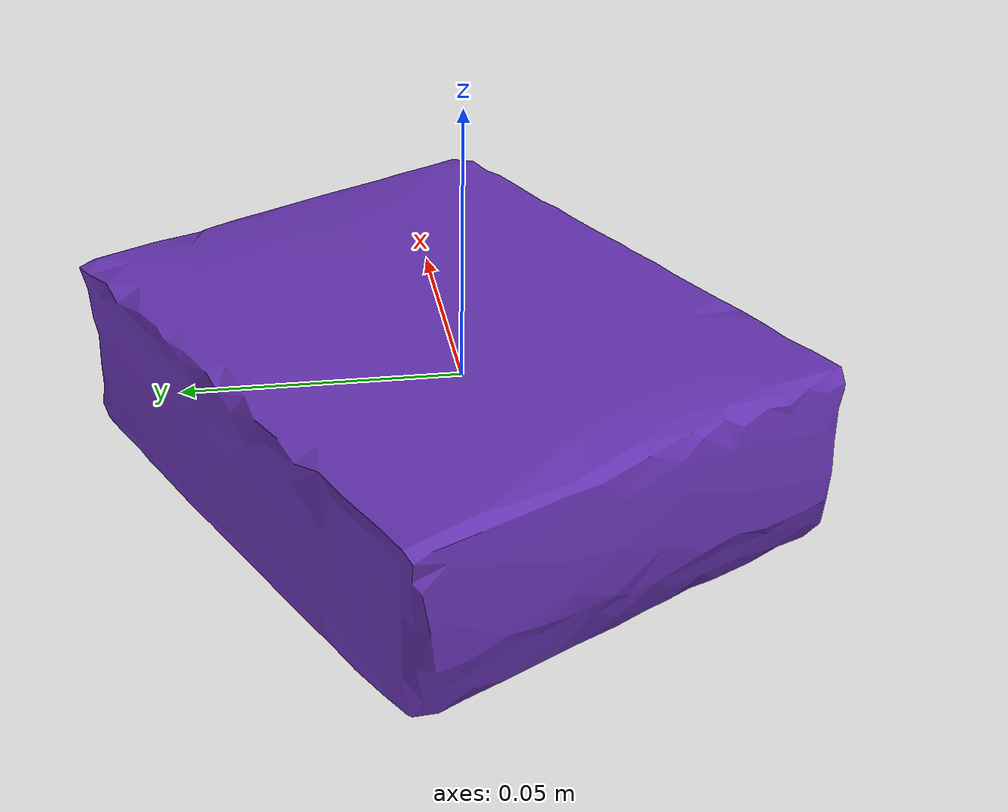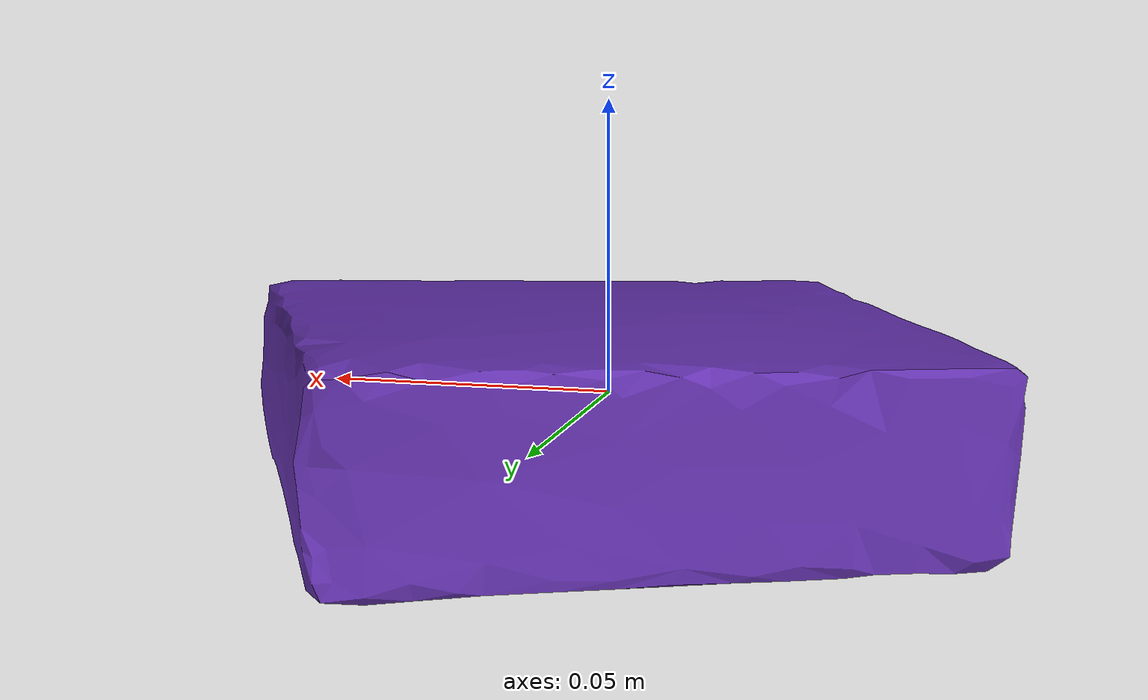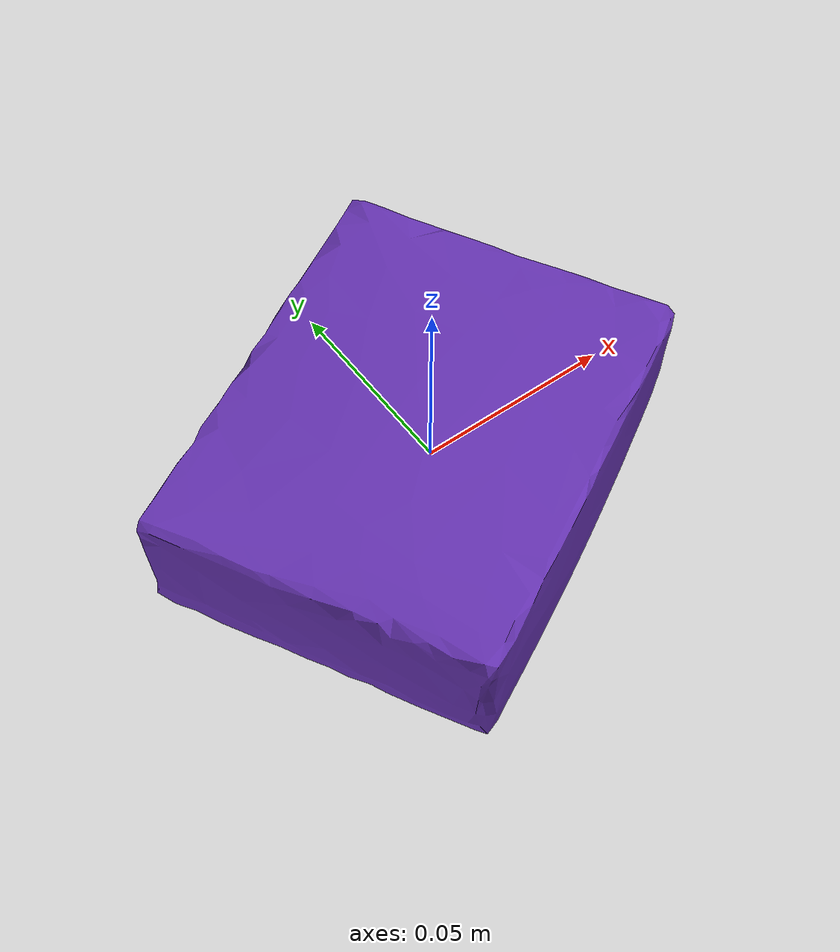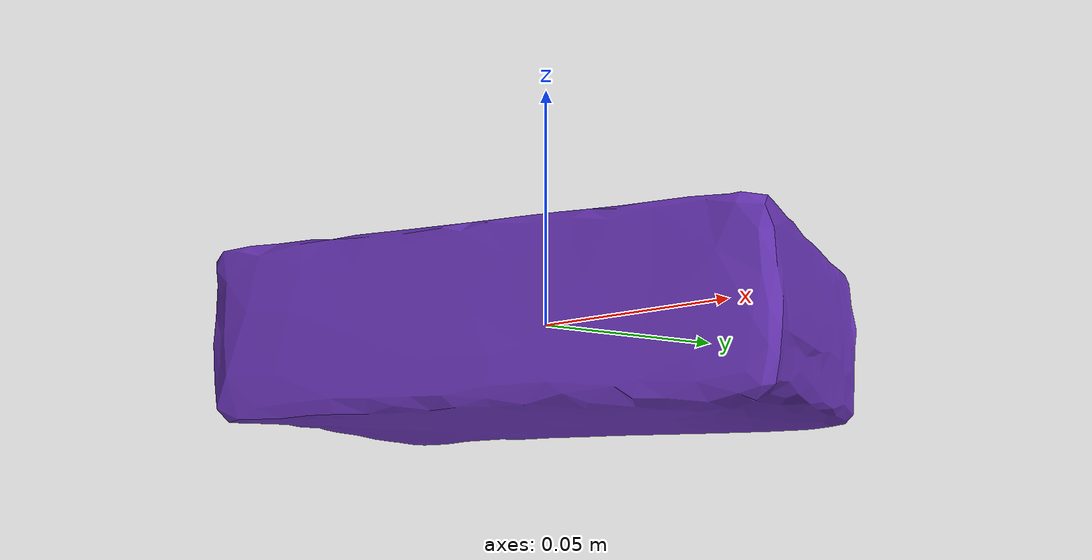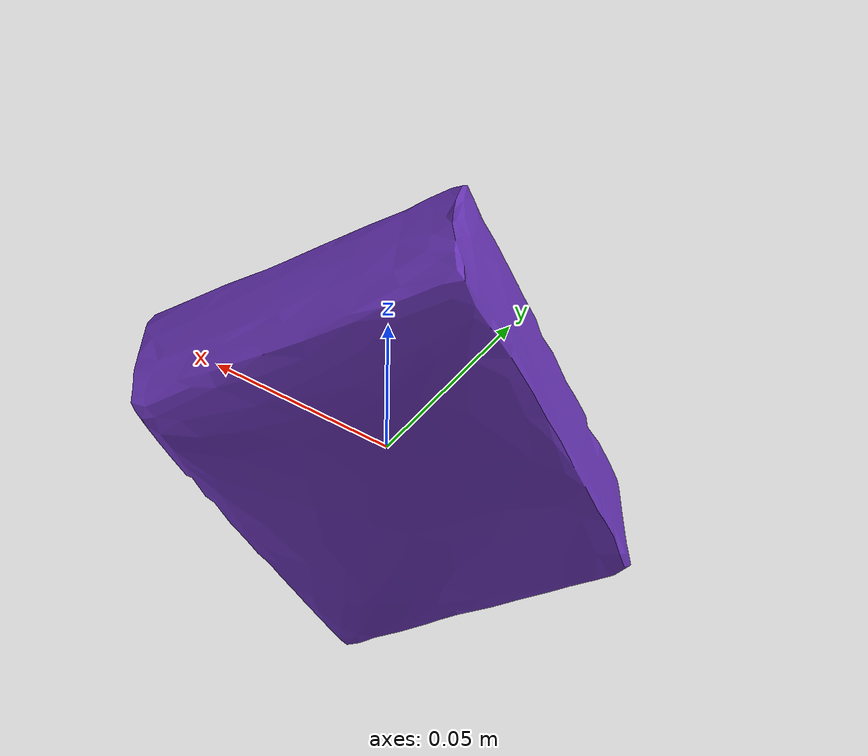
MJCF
<mujoco model="top_watertight_tiny">

  <asset>
    <mesh file="top_watertight_tiny.obj"/>
    <mesh file="top_watertight_tiny_collision_0.obj"/>
    <mesh file="top_watertight_tiny_collision_1.obj"/>
  </asset>
  <worldbody>
    <body name="top_watertight_tiny">
      <freejoint/>
      <geom solimp="0.90 0.95 0.001" solref="0.02 1.0" density="100" friction="0.95 0.4 0.3" rgba="0.4 0.2 0.7 1" mesh="top_watertight_tiny" group="2" type="mesh" contype="0" conaffinity="0"/>
      <geom solimp="0.90 0.95 0.001" solref="0.02 1.0" density="100" friction="0.95 0.4 0.3" mesh="top_watertight_tiny_collision_0" rgba="0.37133925164826154 0.9712906390079413 0.9833357902918002 1" group="3" type="mesh"/>
      <geom solimp="0.90 0.95 0.001" solref="0.02 1.0" density="100" friction="0.95 0.4 0.3" mesh="top_watertight_tiny_collision_1" rgba="0.6144586688967717 0.8751714555364056 0.8538109153053017 1" group="3" type="mesh"/>
    </body>
  </worldbody>
</mujoco>
